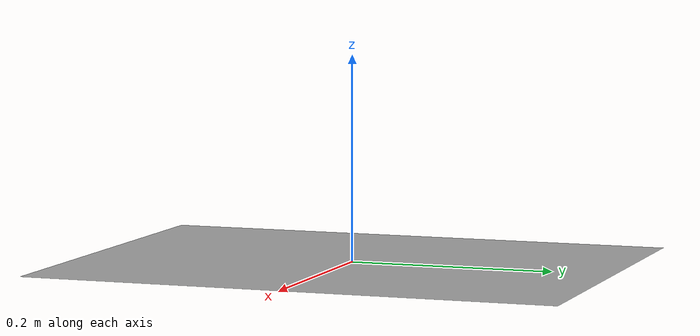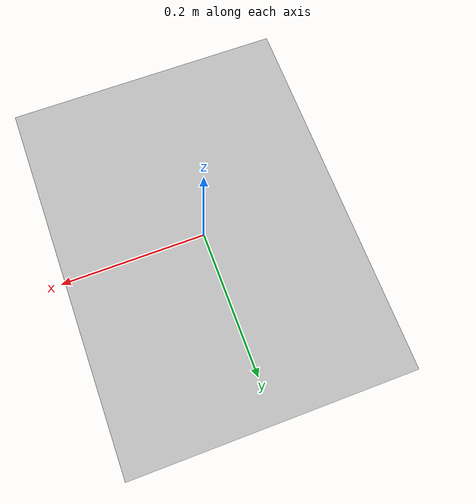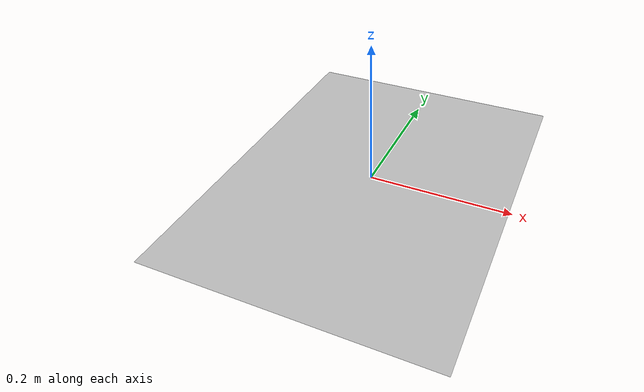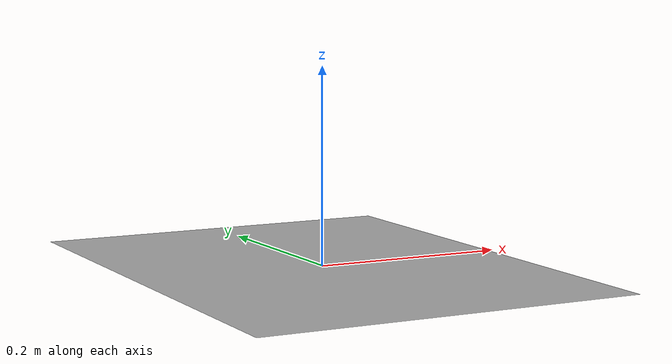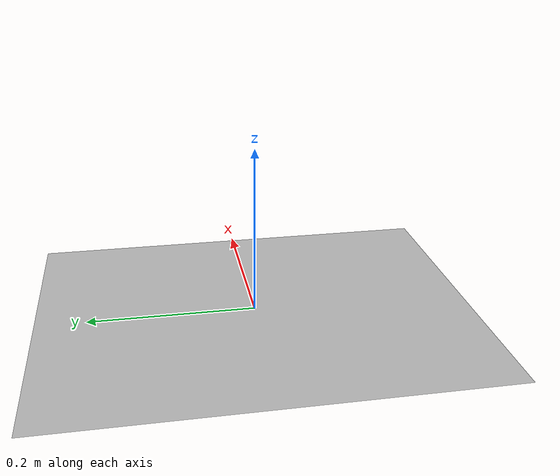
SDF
<?xml version='1.0'?>
<sdf version="1.6">
    <model name="calibration_plane3">
        <static>true</static>
        <link name="link">
            <visual name="visual">
                <geometry>
                    <mesh>
                        <uri>model://calibration_plane3/meshes/calibration_plane.dae</uri>
                    </mesh>
                </geometry>
            </visual>
        </link>
    </model>
</sdf>
